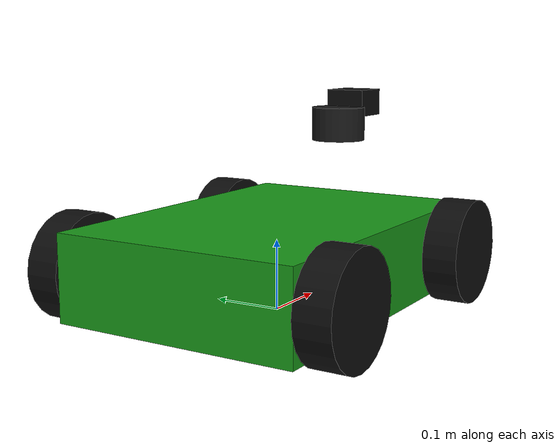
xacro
<?xml version="1.0"?>

<robot name="agri_rover" xmlns:xacro="http://www.ros.org/wiki/xacro">

  <!--        ROBOT SIZE         -->

  <xacro:property name="chassis_length" value="0.50"/>
  <xacro:property name="chassis_width"  value="0.35"/>
  <xacro:property name="chassis_height" value="0.12"/>

  <xacro:property name="wheel_radius" value="0.075"/>
  <xacro:property name="wheel_width"  value="0.05"/>

  <!--        BASE LINK          -->

  <link name="base_link">

    <visual>
      <origin xyz="0 0 0.075" rpy="0 0 0"/>

      <geometry>
        <box size="${chassis_length} ${chassis_width} ${chassis_height}"/>
      </geometry>

      <material name="green">
        <color rgba="0.1 0.6 0.1 1.0"/>
      </material>
    </visual>

    <collision>
      <origin xyz="0 0 0.075" rpy="0 0 0"/>

      <geometry>
        <box size="${chassis_length} ${chassis_width} ${chassis_height}"/>
      </geometry>
    </collision>

    <inertial>
      <origin xyz="0 0 0.075" rpy="0 0 0"/>
      <mass value="5.0"/>

      <inertia
        ixx="0.10"
        ixy="0.0"
        ixz="0.0"
        iyy="0.10"
        iyz="0.0"
        izz="0.15"/>
    </inertial>

  </link>

  <!--      WHEEL MACRO          -->

  <xacro:macro name="wheel" params="name x y">

    <link name="${name}">

      <visual>
        <origin xyz="0 0 0" rpy="1.5708 0 0"/>

        <geometry>
          <cylinder
            radius="${wheel_radius}"
            length="${wheel_width}"/>
        </geometry>

        <material name="black">
          <color rgba="0.05 0.05 0.05 1.0"/>
        </material>
      </visual>

      <collision>
        <origin xyz="0 0 0" rpy="1.5708 0 0"/>

        <geometry>
          <cylinder
            radius="${wheel_radius}"
            length="${wheel_width}"/>
        </geometry>
      </collision>

      <inertial>
        <mass value="0.5"/>
        <inertia
          ixx="0.002"
          ixy="0.0"
          ixz="0.0"
          iyy="0.002"
          iyz="0.0"
          izz="0.002"/>
      </inertial>

    </link>

    <joint name="${name}_joint" type="continuous">

      <parent link="base_link"/>
      <child link="${name}"/>

      <origin xyz="${x} ${y} 0.075" rpy="0 0 0"/>

      <axis xyz="0 1 0"/>

    </joint>

  </xacro:macro>

  <!--       FOUR WHEELS         -->

  <!-- Front Left -->
  <xacro:wheel
    name="front_left_wheel"
    x="0.18"
    y="0.20"/>

  <!-- Front Right -->
  <xacro:wheel
    name="front_right_wheel"
    x="0.18"
    y="-0.20"/>

  <!-- Rear Left -->
  <xacro:wheel
    name="rear_left_wheel"
    x="-0.18"
    y="0.20"/>

  <!-- Rear Right -->
  <xacro:wheel
    name="rear_right_wheel"
    x="-0.18"
    y="-0.20"/>

  <!--     GAZEBO MATERIALS      -->

  <gazebo reference="base_link">
    <material>Gazebo/Green</material>
  </gazebo>

  <gazebo reference="front_left_wheel">
    <material>Gazebo/Black</material>
  </gazebo>

  <gazebo reference="front_right_wheel">
    <material>Gazebo/Black</material>
  </gazebo>

  <gazebo reference="rear_left_wheel">
    <material>Gazebo/Black</material>
  </gazebo>

  <gazebo reference="rear_right_wheel">
    <material>Gazebo/Black</material>
  </gazebo>
  <!--       ROS2 CONTROL        -->

  <ros2_control name="AgriRoverSystem" type="system">

    <hardware>
      <plugin>gz_ros2_control/GazeboSimSystem</plugin>
    </hardware>

    <!-- Front Left Wheel -->
    <joint name="front_left_wheel_joint">
      <command_interface name="velocity"/>
      <state_interface name="position"/>
      <state_interface name="velocity"/>
    </joint>

    <!-- Front Right Wheel -->
    <joint name="front_right_wheel_joint">
      <command_interface name="velocity"/>
      <state_interface name="position"/>
      <state_interface name="velocity"/>
    </joint>

    <!-- Rear Left Wheel -->
    <joint name="rear_left_wheel_joint">
      <command_interface name="velocity"/>
      <state_interface name="position"/>
      <state_interface name="velocity"/>
    </joint>

    <!-- Rear Right Wheel -->
    <joint name="rear_right_wheel_joint">
      <command_interface name="velocity"/>
      <state_interface name="position"/>
      <state_interface name="velocity"/>
    </joint>

  </ros2_control>
  <!--     GAZEBO ROS2 CONTROL   -->

    <gazebo>
    <plugin
      filename="libgz_ros2_control-system.so"
      name="gz_ros2_control::GazeboSimROS2ControlPlugin">
      <parameters>
        /home/manasvi/agri_rover_ws/src/agri_rover_gazebo/config/controllers.yaml
      </parameters>
    </plugin>
  </gazebo>
  <!-- LiDAR -->
  <link name="lidar_link">
    <visual>
      <origin xyz="0 0 0"/>
      <geometry>
        <cylinder radius="0.04" length="0.05"/>
      </geometry>
      <material name="lidar_material">
        <color rgba="0.1 0.1 0.1 1.0"/>
      </material>
    </visual>

    <collision>
      <origin xyz="0 0 0"/>
      <geometry>
        <cylinder radius="0.04" length="0.05"/>
      </geometry>
    </collision>
  </link>

  <joint name="lidar_joint" type="fixed">
    <parent link="base_link"/>
    <child link="lidar_link"/>
    <origin xyz="0.18 0 0.25" rpy="0 0 0"/>
  </joint>

  <!--          LiDAR            -->

  <gazebo reference="lidar_link">
    <sensor name="lidar_link" type="gpu_lidar">
      <pose>0 0 0 0 0 0</pose>

      <update_rate>10</update_rate>

      <topic>/scan</topic>

      <ray>
        <scan>
          <horizontal>
            <samples>360</samples>
            <resolution>1</resolution>
            <min_angle>-3.141592</min_angle>
            <max_angle>3.141592</max_angle>
          </horizontal>
        </scan>

        <range>
          <min>0.12</min>
          <max>10.0</max>
          <resolution>0.01</resolution>
        </range>

        <noise>
          <type>gaussian</type>
          <mean>0.0</mean>
          <stddev>0.01</stddev>
        </noise>
      </ray>

      <always_on>true</always_on>
      <visualize>true</visualize>
    </sensor>
  </gazebo>
  <!-- Simulated RGB Camera -->
  <link name="camera_link">
    <visual>
      <geometry>
        <box size="0.06 0.06 0.04"/>
      </geometry>
      <material name="camera_black">
        <color rgba="0.05 0.05 0.05 1.0"/>
      </material>
    </visual>
    <collision>
      <geometry>
        <box size="0.06 0.06 0.04"/>
      </geometry>
    </collision>
    <inertial>
      <mass value="0.1"/>
      <inertia ixx="0.0001" ixy="0" ixz="0"
               iyy="0.0001" iyz="0"
               izz="0.0001"/>
    </inertial>
  </link>

  <joint name="camera_joint" type="fixed">
    <parent link="base_link"/>
    <child link="camera_link"/>
    <origin xyz="0.23 0 0.28" rpy="0 0 0"/>
  </joint>

  <gazebo reference="camera_link">
    <sensor name="camera_sensor" type="camera">
      <pose>0 0 0 0 0 0</pose>
      <update_rate>10</update_rate>
      <topic>/camera/image_raw</topic>

      <camera>
        <horizontal_fov>1.047</horizontal_fov>

        <image>
          <width>640</width>
          <height>480</height>
          <format>R8G8B8</format>
        </image>

        <clip>
          <near>0.1</near>
          <far>20.0</far>
        </clip>
      </camera>

      <always_on>true</always_on>
      <visualize>true</visualize>
    </sensor>
  </gazebo>
</robot>
